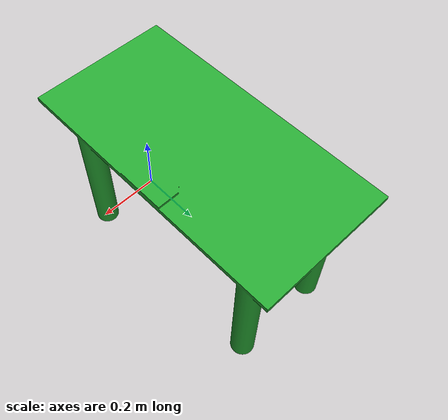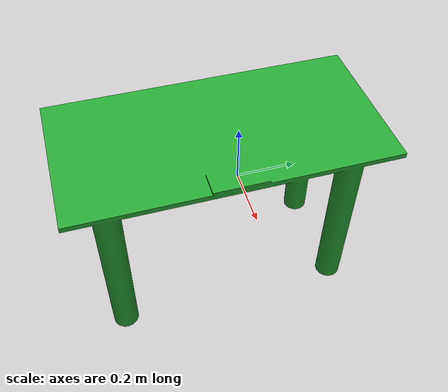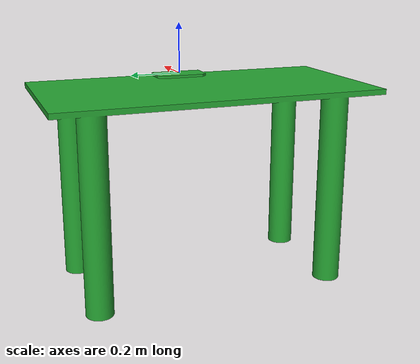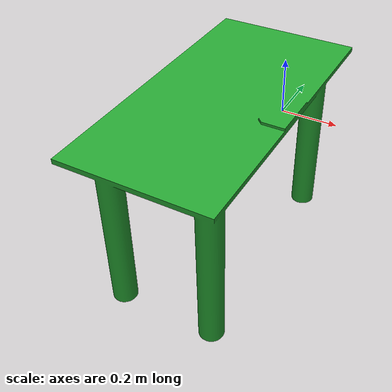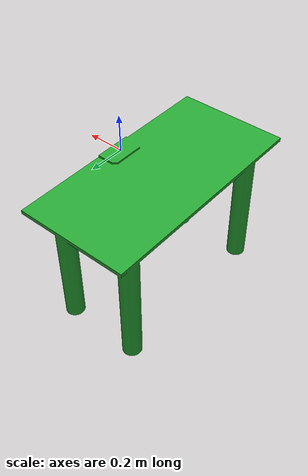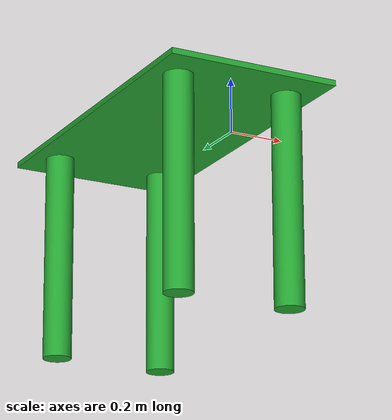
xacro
<?xml version="1.0"?>
<robot xmlns:xacro="http://www.ros.org/wiki/xacro">
  <link name="table_link">
    <visual>
        <origin xyz="-0.245 0 -0.76" rpy="0 0 -1.5708" />
        <geometry>
          <mesh filename="package://ts_robot_description/mesh/table/visual/table.stl"  scale = "0.001 0.001 0.001"/>
        </geometry>
        <material name="light_green"/>
    </visual>
    <collision>
        <origin xyz="-0.245 0 -0.76" rpy="0 0 -1.5708" />
        <geometry>
            <mesh filename="package://ts_robot_description/mesh/table/collision/table.stl"  scale = "0.001 0.001 0.001"/>
        </geometry>
    </collision>
    </link>
</robot>
